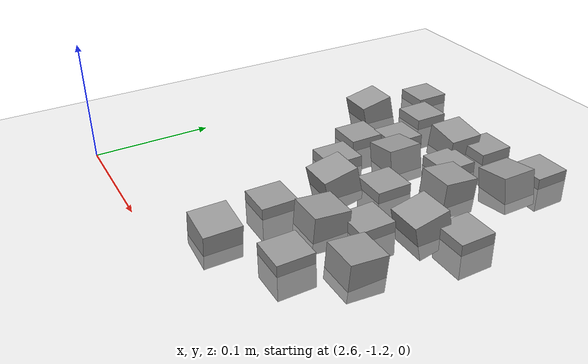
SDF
<sdf version="1.7">
 <world name="default">
  <model name="ground_plane">
   <static>1</static>
   <link name="link">
    <collision name="collision">
     <geometry><plane><normal>0 0 1</normal><size>100 100</size></plane></geometry>
     <surface><friction><ode><mu>100</mu><mu2>50</mu2></ode></friction></surface>
    </collision>
    <visual name="visual">
     <cast_shadows>0</cast_shadows>
     <geometry><plane><normal>0 0 1</normal><size>100 100</size></plane></geometry>
     <material>
      <script><uri>file://media/materials/scripts/gazebo.material</uri><name>Gazebo/Grey</name></script>
     </material>
    </visual>
   </link>
  </model>
  <model name="stone_road_12">
   <link name="link_0_clone_0">
    <inertial>
     <mass>1</mass>
     <inertia>
      <ixx>0.166667</ixx>
      <ixy>0</ixy>
      <ixz>0</ixz>
      <iyy>0.166667</iyy>
      <iyz>0</iyz>
      <izz>0.166667</izz>
     </inertia>
    </inertial>
    <pose>-0.104982 -0.15412 0.003778 0.2 -0 0</pose>
    <kinematic>1</kinematic>
    <visual name="visual">
     <geometry><box><size>0.03 0.03 0.03</size></box></geometry>
     <material>
      <lighting>1</lighting>
      <script><uri>file://media/materials/scripts/gazebo.material</uri><name>Gazebo/Grey</name></script>
      <shader type="pixel"><normal_map>__default__</normal_map></shader>
      <ambient>0.3 0.3 0.3 1</ambient>
      <diffuse>0.7 0.7 0.7 1</diffuse>
      <specular>0.01 0.01 0.01 1</specular>
      <emissive>0 0 0 1</emissive>
     </material>
    </visual>
    <collision name="collision">
     <geometry><box><size>0.03 0.03 0.03</size></box></geometry>
     <surface>
      <friction>
       <ode><mu>1</mu><mu2>1</mu2><fdir1>0 0 0</fdir1><slip1>0</slip1><slip2>0</slip2></ode>
       <torsional>
        <coefficient>1</coefficient>
        <patch_radius>0</patch_radius>
        <surface_radius>0</surface_radius>
        <use_patch_radius>1</use_patch_radius>
        <ode><slip>0</slip></ode>
       </torsional>
      </friction>
      <bounce><restitution_coefficient>0</restitution_coefficient><threshold>1e+06</threshold></bounce>
      <contact>
       <collide_without_contact>0</collide_without_contact>
       <collide_without_contact_bitmask>1</collide_without_contact_bitmask>
       <collide_bitmask>1</collide_bitmask>
       <ode>
        <soft_cfm>0</soft_cfm>
        <soft_erp>0.2</soft_erp>
        <kp>1e+13</kp>
        <kd>1</kd>
        <max_vel>0.01</max_vel>
        <min_depth>0</min_depth>
       </ode>
       <bullet>
        <split_impulse>1</split_impulse>
        <split_impulse_penetration_threshold>-0.01</split_impulse_penetration_threshold>
        <soft_cfm>0</soft_cfm>
        <soft_erp>0.2</soft_erp>
        <kp>1e+13</kp>
        <kd>1</kd>
       </bullet>
      </contact>
     </surface>
    </collision>
   </link>
   <link name="link_0_clone_1">
    <inertial>
     <mass>1</mass>
     <inertia>
      <ixx>0.166667</ixx>
      <ixy>0</ixy>
      <ixz>0</ixz>
      <iyy>0.166667</iyy>
      <iyz>0</iyz>
      <izz>0.166667</izz>
     </inertia>
    </inertial>
    <pose>-0.022921 -0.129606 0.003778 0.2 -0 0</pose>
    <kinematic>1</kinematic>
    <visual name="visual">
     <geometry><box><size>0.03 0.03 0.03</size></box></geometry>
     <material>
      <lighting>1</lighting>
      <script><uri>file://media/materials/scripts/gazebo.material</uri><name>Gazebo/Grey</name></script>
      <shader type="pixel"><normal_map>__default__</normal_map></shader>
      <ambient>0.3 0.3 0.3 1</ambient>
      <diffuse>0.7 0.7 0.7 1</diffuse>
      <specular>0.01 0.01 0.01 1</specular>
      <emissive>0 0 0 1</emissive>
     </material>
    </visual>
    <collision name="collision">
     <geometry><box><size>0.03 0.03 0.03</size></box></geometry>
     <surface>
      <friction>
       <ode><mu>1</mu><mu2>1</mu2><fdir1>0 0 0</fdir1><slip1>0</slip1><slip2>0</slip2></ode>
       <torsional>
        <coefficient>1</coefficient>
        <patch_radius>0</patch_radius>
        <surface_radius>0</surface_radius>
        <use_patch_radius>1</use_patch_radius>
        <ode><slip>0</slip></ode>
       </torsional>
      </friction>
      <bounce><restitution_coefficient>0</restitution_coefficient><threshold>1e+06</threshold></bounce>
      <contact>
       <collide_without_contact>0</collide_without_contact>
       <collide_without_contact_bitmask>1</collide_without_contact_bitmask>
       <collide_bitmask>1</collide_bitmask>
       <ode>
        <soft_cfm>0</soft_cfm>
        <soft_erp>0.2</soft_erp>
        <kp>1e+13</kp>
        <kd>1</kd>
        <max_vel>0.01</max_vel>
        <min_depth>0</min_depth>
       </ode>
       <bullet>
        <split_impulse>1</split_impulse>
        <split_impulse_penetration_threshold>-0.01</split_impulse_penetration_threshold>
        <soft_cfm>0</soft_cfm>
        <soft_erp>0.2</soft_erp>
        <kp>1e+13</kp>
        <kd>1</kd>
       </bullet>
      </contact>
     </surface>
    </collision>
   </link>
   <link name="link_0_clone_2_clone">
    <inertial>
     <mass>1</mass>
     <inertia>
      <ixx>0.166667</ixx>
      <ixy>0</ixy>
      <ixz>0</ixz>
      <iyy>0.166667</iyy>
      <iyz>0</iyz>
      <izz>0.166667</izz>
     </inertia>
    </inertial>
    <pose>-0.10771 -0.03187 0.003778 0 0.15 0</pose>
    <kinematic>1</kinematic>
    <visual name="visual">
     <geometry><box><size>0.03 0.03 0.03</size></box></geometry>
     <material>
      <lighting>1</lighting>
      <script><uri>file://media/materials/scripts/gazebo.material</uri><name>Gazebo/Grey</name></script>
      <shader type="pixel"><normal_map>__default__</normal_map></shader>
      <ambient>0.3 0.3 0.3 1</ambient>
      <diffuse>0.7 0.7 0.7 1</diffuse>
      <specular>0.01 0.01 0.01 1</specular>
      <emissive>0 0 0 1</emissive>
     </material>
    </visual>
    <collision name="collision">
     <geometry><box><size>0.03 0.03 0.03</size></box></geometry>
     <surface>
      <friction>
       <ode><mu>1</mu><mu2>1</mu2><fdir1>0 0 0</fdir1><slip1>0</slip1><slip2>0</slip2></ode>
       <torsional>
        <coefficient>1</coefficient>
        <patch_radius>0</patch_radius>
        <surface_radius>0</surface_radius>
        <use_patch_radius>1</use_patch_radius>
        <ode><slip>0</slip></ode>
       </torsional>
      </friction>
      <bounce><restitution_coefficient>0</restitution_coefficient><threshold>1e+06</threshold></bounce>
      <contact>
       <collide_without_contact>0</collide_without_contact>
       <collide_without_contact_bitmask>1</collide_without_contact_bitmask>
       <collide_bitmask>1</collide_bitmask>
       <ode>
        <soft_cfm>0</soft_cfm>
        <soft_erp>0.2</soft_erp>
        <kp>1e+13</kp>
        <kd>1</kd>
        <max_vel>0.01</max_vel>
        <min_depth>0</min_depth>
       </ode>
       <bullet>
        <split_impulse>1</split_impulse>
        <split_impulse_penetration_threshold>-0.01</split_impulse_penetration_threshold>
        <soft_cfm>0</soft_cfm>
        <soft_erp>0.2</soft_erp>
        <kp>1e+13</kp>
        <kd>1</kd>
       </bullet>
      </contact>
     </surface>
    </collision>
   </link>
   <link name="link_0_clone_2_clone_2_clone_0">
    <inertial>
     <mass>1</mass>
     <inertia>
      <ixx>0.166667</ixx>
      <ixy>0</ixy>
      <ixz>0</ixz>
      <iyy>0.166667</iyy>
      <iyz>0</iyz>
      <izz>0.166667</izz>
     </inertia>
    </inertial>
    <pose>-0.032874 -0.039714 0.003778 0 -0.15 0</pose>
    <kinematic>1</kinematic>
    <visual name="visual">
     <geometry><box><size>0.03 0.03 0.03</size></box></geometry>
     <material>
      <lighting>1</lighting>
      <script><uri>file://media/materials/scripts/gazebo.material</uri><name>Gazebo/Grey</name></script>
      <shader type="pixel"><normal_map>__default__</normal_map></shader>
      <ambient>0.3 0.3 0.3 1</ambient>
      <diffuse>0.7 0.7 0.7 1</diffuse>
      <specular>0.01 0.01 0.01 1</specular>
      <emissive>0 0 0 1</emissive>
     </material>
    </visual>
    <collision name="collision">
     <geometry><box><size>0.03 0.03 0.03</size></box></geometry>
     <surface>
      <friction>
       <ode><mu>1</mu><mu2>1</mu2><fdir1>0 0 0</fdir1><slip1>0</slip1><slip2>0</slip2></ode>
       <torsional>
        <coefficient>1</coefficient>
        <patch_radius>0</patch_radius>
        <surface_radius>0</surface_radius>
        <use_patch_radius>1</use_patch_radius>
        <ode><slip>0</slip></ode>
       </torsional>
      </friction>
      <bounce><restitution_coefficient>0</restitution_coefficient><threshold>1e+06</threshold></bounce>
      <contact>
       <collide_without_contact>0</collide_without_contact>
       <collide_without_contact_bitmask>1</collide_without_contact_bitmask>
       <collide_bitmask>1</collide_bitmask>
       <ode>
        <soft_cfm>0</soft_cfm>
        <soft_erp>0.2</soft_erp>
        <kp>1e+13</kp>
        <kd>1</kd>
        <max_vel>0.01</max_vel>
        <min_depth>0</min_depth>
       </ode>
       <bullet>
        <split_impulse>1</split_impulse>
        <split_impulse_penetration_threshold>-0.01</split_impulse_penetration_threshold>
        <soft_cfm>0</soft_cfm>
        <soft_erp>0.2</soft_erp>
        <kp>1e+13</kp>
        <kd>1</kd>
       </bullet>
      </contact>
     </surface>
    </collision>
   </link>
   <link name="link_0_clone_2_clone_2_clone_13_clone_clone_10">
    <inertial>
     <mass>1</mass>
     <inertia>
      <ixx>0.166667</ixx>
      <ixy>0</ixy>
      <ixz>0</ixz>
      <iyy>0.166667</iyy>
      <iyz>0</iyz>
      <izz>0.166667</izz>
     </inertia>
    </inertial>
    <pose>-0.006825 -0.196489 0.003778 -0.1 0 0</pose>
    <kinematic>1</kinematic>
    <visual name="visual">
     <geometry><box><size>0.03 0.03 0.03</size></box></geometry>
     <material>
      <lighting>1</lighting>
      <script><uri>file://media/materials/scripts/gazebo.material</uri><name>Gazebo/Grey</name></script>
      <shader type="pixel"><normal_map>__default__</normal_map></shader>
      <ambient>0.3 0.3 0.3 1</ambient>
      <diffuse>0.7 0.7 0.7 1</diffuse>
      <specular>0.01 0.01 0.01 1</specular>
      <emissive>0 0 0 1</emissive>
     </material>
    </visual>
    <collision name="collision">
     <geometry><box><size>0.03 0.03 0.03</size></box></geometry>
     <surface>
      <friction>
       <ode><mu>1</mu><mu2>1</mu2><fdir1>0 0 0</fdir1><slip1>0</slip1><slip2>0</slip2></ode>
       <torsional>
        <coefficient>1</coefficient>
        <patch_radius>0</patch_radius>
        <surface_radius>0</surface_radius>
        <use_patch_radius>1</use_patch_radius>
        <ode><slip>0</slip></ode>
       </torsional>
      </friction>
      <bounce><restitution_coefficient>0</restitution_coefficient><threshold>1e+06</threshold></bounce>
      <contact>
       <collide_without_contact>0</collide_without_contact>
       <collide_without_contact_bitmask>1</collide_without_contact_bitmask>
       <collide_bitmask>1</collide_bitmask>
       <ode>
        <soft_cfm>0</soft_cfm>
        <soft_erp>0.2</soft_erp>
        <kp>1e+13</kp>
        <kd>1</kd>
        <max_vel>0.01</max_vel>
        <min_depth>0</min_depth>
       </ode>
       <bullet>
        <split_impulse>1</split_impulse>
        <split_impulse_penetration_threshold>-0.01</split_impulse_penetration_threshold>
        <soft_cfm>0</soft_cfm>
        <soft_erp>0.2</soft_erp>
        <kp>1e+13</kp>
        <kd>1</kd>
       </bullet>
      </contact>
     </surface>
    </collision>
   </link>
   <link name="link_0_clone_2_clone_2_clone_13_clone_clone_16_clone_10">
    <inertial>
     <mass>1</mass>
     <inertia>
      <ixx>0.166667</ixx>
      <ixy>0</ixy>
      <ixz>0</ixz>
      <iyy>0.166667</iyy>
      <iyz>0</iyz>
      <izz>0.166667</izz>
     </inertia>
    </inertial>
    <pose>-0.082186 -0.05781 -0.006222 0 -0 0</pose>
    <kinematic>1</kinematic>
    <visual name="visual">
     <geometry><box><size>0.03 0.03 0.03</size></box></geometry>
     <material>
      <lighting>1</lighting>
      <script><uri>file://media/materials/scripts/gazebo.material</uri><name>Gazebo/Grey</name></script>
      <shader type="pixel"><normal_map>__default__</normal_map></shader>
      <ambient>0.3 0.3 0.3 1</ambient>
      <diffuse>0.7 0.7 0.7 1</diffuse>
      <specular>0.01 0.01 0.01 1</specular>
      <emissive>0 0 0 1</emissive>
     </material>
    </visual>
    <collision name="collision">
     <geometry><box><size>0.03 0.03 0.03</size></box></geometry>
     <surface>
      <friction>
       <ode><mu>1</mu><mu2>1</mu2><fdir1>0 0 0</fdir1><slip1>0</slip1><slip2>0</slip2></ode>
       <torsional>
        <coefficient>1</coefficient>
        <patch_radius>0</patch_radius>
        <surface_radius>0</surface_radius>
        <use_patch_radius>1</use_patch_radius>
        <ode><slip>0</slip></ode>
       </torsional>
      </friction>
      <bounce><restitution_coefficient>0</restitution_coefficient><threshold>1e+06</threshold></bounce>
      <contact>
       <collide_without_contact>0</collide_without_contact>
       <collide_without_contact_bitmask>1</collide_without_contact_bitmask>
       <collide_bitmask>1</collide_bitmask>
       <ode>
        <soft_cfm>0</soft_cfm>
        <soft_erp>0.2</soft_erp>
        <kp>1e+13</kp>
        <kd>1</kd>
        <max_vel>0.01</max_vel>
        <min_depth>0</min_depth>
       </ode>
       <bullet>
        <split_impulse>1</split_impulse>
        <split_impulse_penetration_threshold>-0.01</split_impulse_penetration_threshold>
        <soft_cfm>0</soft_cfm>
        <soft_erp>0.2</soft_erp>
        <kp>1e+13</kp>
        <kd>1</kd>
       </bullet>
      </contact>
     </surface>
    </collision>
   </link>
   <link name="link_0_clone_2_clone_2_clone_13_clone_clone_16_clone_11">
    <inertial>
     <mass>1</mass>
     <inertia>
      <ixx>0.166667</ixx>
      <ixy>0</ixy>
      <ixz>0</ixz>
      <iyy>0.166667</iyy>
      <iyz>0</iyz>
      <izz>0.166667</izz>
     </inertia>
    </inertial>
    <pose>-0.141844 -0.066911 -0.006222 0 -0 0</pose>
    <kinematic>1</kinematic>
    <visual name="visual">
     <geometry><box><size>0.03 0.03 0.03</size></box></geometry>
     <material>
      <lighting>1</lighting>
      <script><uri>file://media/materials/scripts/gazebo.material</uri><name>Gazebo/Grey</name></script>
      <shader type="pixel"><normal_map>__default__</normal_map></shader>
      <ambient>0.3 0.3 0.3 1</ambient>
      <diffuse>0.7 0.7 0.7 1</diffuse>
      <specular>0.01 0.01 0.01 1</specular>
      <emissive>0 0 0 1</emissive>
     </material>
    </visual>
    <collision name="collision">
     <geometry><box><size>0.03 0.03 0.03</size></box></geometry>
     <surface>
      <friction>
       <ode><mu>1</mu><mu2>1</mu2><fdir1>0 0 0</fdir1><slip1>0</slip1><slip2>0</slip2></ode>
       <torsional>
        <coefficient>1</coefficient>
        <patch_radius>0</patch_radius>
        <surface_radius>0</surface_radius>
        <use_patch_radius>1</use_patch_radius>
        <ode><slip>0</slip></ode>
       </torsional>
      </friction>
      <bounce><restitution_coefficient>0</restitution_coefficient><threshold>1e+06</threshold></bounce>
      <contact>
       <collide_without_contact>0</collide_without_contact>
       <collide_without_contact_bitmask>1</collide_without_contact_bitmask>
       <collide_bitmask>1</collide_bitmask>
       <ode>
        <soft_cfm>0</soft_cfm>
        <soft_erp>0.2</soft_erp>
        <kp>1e+13</kp>
        <kd>1</kd>
        <max_vel>0.01</max_vel>
        <min_depth>0</min_depth>
       </ode>
       <bullet>
        <split_impulse>1</split_impulse>
        <split_impulse_penetration_threshold>-0.01</split_impulse_penetration_threshold>
        <soft_cfm>0</soft_cfm>
        <soft_erp>0.2</soft_erp>
        <kp>1e+13</kp>
        <kd>1</kd>
       </bullet>
      </contact>
     </surface>
    </collision>
   </link>
   <link name="link_0_clone_2_clone_2_clone_13_clone_clone_16_clone_12">
    <inertial>
     <mass>1</mass>
     <inertia>
      <ixx>0.166667</ixx>
      <ixy>0</ixy>
      <ixz>0</ixz>
      <iyy>0.166667</iyy>
      <iyz>0</iyz>
      <izz>0.166667</izz>
     </inertia>
    </inertial>
    <pose>-0.164908 -0.022947 -0.006222 0 -0 0</pose>
    <kinematic>1</kinematic>
    <visual name="visual">
     <geometry><box><size>0.03 0.03 0.03</size></box></geometry>
     <material>
      <lighting>1</lighting>
      <script><uri>file://media/materials/scripts/gazebo.material</uri><name>Gazebo/Grey</name></script>
      <shader type="pixel"><normal_map>__default__</normal_map></shader>
      <ambient>0.3 0.3 0.3 1</ambient>
      <diffuse>0.7 0.7 0.7 1</diffuse>
      <specular>0.01 0.01 0.01 1</specular>
      <emissive>0 0 0 1</emissive>
     </material>
    </visual>
    <collision name="collision">
     <geometry><box><size>0.03 0.03 0.03</size></box></geometry>
     <surface>
      <friction>
       <ode><mu>1</mu><mu2>1</mu2><fdir1>0 0 0</fdir1><slip1>0</slip1><slip2>0</slip2></ode>
       <torsional>
        <coefficient>1</coefficient>
        <patch_radius>0</patch_radius>
        <surface_radius>0</surface_radius>
        <use_patch_radius>1</use_patch_radius>
        <ode><slip>0</slip></ode>
       </torsional>
      </friction>
      <bounce><restitution_coefficient>0</restitution_coefficient><threshold>1e+06</threshold></bounce>
      <contact>
       <collide_without_contact>0</collide_without_contact>
       <collide_without_contact_bitmask>1</collide_without_contact_bitmask>
       <collide_bitmask>1</collide_bitmask>
       <ode>
        <soft_cfm>0</soft_cfm>
        <soft_erp>0.2</soft_erp>
        <kp>1e+13</kp>
        <kd>1</kd>
        <max_vel>0.01</max_vel>
        <min_depth>0</min_depth>
       </ode>
       <bullet>
        <split_impulse>1</split_impulse>
        <split_impulse_penetration_threshold>-0.01</split_impulse_penetration_threshold>
        <soft_cfm>0</soft_cfm>
        <soft_erp>0.2</soft_erp>
        <kp>1e+13</kp>
        <kd>1</kd>
       </bullet>
      </contact>
     </surface>
    </collision>
   </link>
   <link name="link_0_clone_2_clone_2_clone_13_clone_clone_16_clone_26">
    <inertial>
     <mass>1</mass>
     <inertia>
      <ixx>0.166667</ixx>
      <ixy>0</ixy>
      <ixz>0</ixz>
      <iyy>0.166667</iyy>
      <iyz>0</iyz>
      <izz>0.166667</izz>
     </inertia>
    </inertial>
    <pose>-0.035162 -0.002247 -0.006222 0 -0 0</pose>
    <kinematic>1</kinematic>
    <visual name="visual">
     <geometry><box><size>0.03 0.03 0.03</size></box></geometry>
     <material>
      <lighting>1</lighting>
      <script><uri>file://media/materials/scripts/gazebo.material</uri><name>Gazebo/Grey</name></script>
      <shader type="pixel"><normal_map>__default__</normal_map></shader>
      <ambient>0.3 0.3 0.3 1</ambient>
      <diffuse>0.7 0.7 0.7 1</diffuse>
      <specular>0.01 0.01 0.01 1</specular>
      <emissive>0 0 0 1</emissive>
     </material>
    </visual>
    <collision name="collision">
     <geometry><box><size>0.03 0.03 0.03</size></box></geometry>
     <surface>
      <friction>
       <ode><mu>1</mu><mu2>1</mu2><fdir1>0 0 0</fdir1><slip1>0</slip1><slip2>0</slip2></ode>
       <torsional>
        <coefficient>1</coefficient>
        <patch_radius>0</patch_radius>
        <surface_radius>0</surface_radius>
        <use_patch_radius>1</use_patch_radius>
        <ode><slip>0</slip></ode>
       </torsional>
      </friction>
      <bounce><restitution_coefficient>0</restitution_coefficient><threshold>1e+06</threshold></bounce>
      <contact>
       <collide_without_contact>0</collide_without_contact>
       <collide_without_contact_bitmask>1</collide_without_contact_bitmask>
       <collide_bitmask>1</collide_bitmask>
       <ode>
        <soft_cfm>0</soft_cfm>
        <soft_erp>0.2</soft_erp>
        <kp>1e+13</kp>
        <kd>1</kd>
        <max_vel>0.01</max_vel>
        <min_depth>0</min_depth>
       </ode>
       <bullet>
        <split_impulse>1</split_impulse>
        <split_impulse_penetration_threshold>-0.01</split_impulse_penetration_threshold>
        <soft_cfm>0</soft_cfm>
        <soft_erp>0.2</soft_erp>
        <kp>1e+13</kp>
        <kd>1</kd>
       </bullet>
      </contact>
     </surface>
    </collision>
   </link>
   <link name="link_0_clone_2_clone_2_clone_13_clone_clone_16_clone_27">
    <inertial>
     <mass>1</mass>
     <inertia>
      <ixx>0.166667</ixx>
      <ixy>0</ixy>
      <ixz>0</ixz>
      <iyy>0.166667</iyy>
      <iyz>0</iyz>
      <izz>0.166667</izz>
     </inertia>
    </inertial>
    <pose>-0.137316 -0.132225 -0.006222 0 -0 0</pose>
    <kinematic>1</kinematic>
    <visual name="visual">
     <geometry><box><size>0.03 0.03 0.03</size></box></geometry>
     <material>
      <lighting>1</lighting>
      <script><uri>file://media/materials/scripts/gazebo.material</uri><name>Gazebo/Grey</name></script>
      <shader type="pixel"><normal_map>__default__</normal_map></shader>
      <ambient>0.3 0.3 0.3 1</ambient>
      <diffuse>0.7 0.7 0.7 1</diffuse>
      <specular>0.01 0.01 0.01 1</specular>
      <emissive>0 0 0 1</emissive>
     </material>
    </visual>
    <collision name="collision">
     <geometry><box><size>0.03 0.03 0.03</size></box></geometry>
     <surface>
      <friction>
       <ode><mu>1</mu><mu2>1</mu2><fdir1>0 0 0</fdir1><slip1>0</slip1><slip2>0</slip2></ode>
       <torsional>
        <coefficient>1</coefficient>
        <patch_radius>0</patch_radius>
        <surface_radius>0</surface_radius>
        <use_patch_radius>1</use_patch_radius>
        <ode><slip>0</slip></ode>
       </torsional>
      </friction>
      <bounce><restitution_coefficient>0</restitution_coefficient><threshold>1e+06</threshold></bounce>
      <contact>
       <collide_without_contact>0</collide_without_contact>
       <collide_without_contact_bitmask>1</collide_without_contact_bitmask>
       <collide_bitmask>1</collide_bitmask>
       <ode>
        <soft_cfm>0</soft_cfm>
        <soft_erp>0.2</soft_erp>
        <kp>1e+13</kp>
        <kd>1</kd>
        <max_vel>0.01</max_vel>
        <min_depth>0</min_depth>
       </ode>
       <bullet>
        <split_impulse>1</split_impulse>
        <split_impulse_penetration_threshold>-0.01</split_impulse_penetration_threshold>
        <soft_cfm>0</soft_cfm>
        <soft_erp>0.2</soft_erp>
        <kp>1e+13</kp>
        <kd>1</kd>
       </bullet>
      </contact>
     </surface>
    </collision>
   </link>
   <link name="link_0_clone_2_clone_2_clone_13_clone_clone_16_clone_28">
    <inertial>
     <mass>1</mass>
     <inertia>
      <ixx>0.166667</ixx>
      <ixy>0</ixy>
      <ixz>0</ixz>
      <iyy>0.166667</iyy>
      <iyz>0</iyz>
      <izz>0.166667</izz>
     </inertia>
    </inertial>
    <pose>-0.10708 -0.209042 -0.006222 0 -0 0</pose>
    <kinematic>1</kinematic>
    <visual name="visual">
     <geometry><box><size>0.03 0.03 0.03</size></box></geometry>
     <material>
      <lighting>1</lighting>
      <script><uri>file://media/materials/scripts/gazebo.material</uri><name>Gazebo/Grey</name></script>
      <shader type="pixel"><normal_map>__default__</normal_map></shader>
      <ambient>0.3 0.3 0.3 1</ambient>
      <diffuse>0.7 0.7 0.7 1</diffuse>
      <specular>0.01 0.01 0.01 1</specular>
      <emissive>0 0 0 1</emissive>
     </material>
    </visual>
    <collision name="collision">
     <geometry><box><size>0.03 0.03 0.03</size></box></geometry>
     <surface>
      <friction>
       <ode><mu>1</mu><mu2>1</mu2><fdir1>0 0 0</fdir1><slip1>0</slip1><slip2>0</slip2></ode>
       <torsional>
        <coefficient>1</coefficient>
        <patch_radius>0</patch_radius>
        <surface_radius>0</surface_radius>
        <use_patch_radius>1</use_patch_radius>
        <ode><slip>0</slip></ode>
       </torsional>
      </friction>
      <bounce><restitution_coefficient>0</restitution_coefficient><threshold>1e+06</threshold></bounce>
      <contact>
       <collide_without_contact>0</collide_without_contact>
       <collide_without_contact_bitmask>1</collide_without_contact_bitmask>
       <collide_bitmask>1</collide_bitmask>
       <ode>
        <soft_cfm>0</soft_cfm>
        <soft_erp>0.2</soft_erp>
        <kp>1e+13</kp>
        <kd>1</kd>
        <max_vel>0.01</max_vel>
        <min_depth>0</min_depth>
       </ode>
       <bullet>
        <split_impulse>1</split_impulse>
        <split_impulse_penetration_threshold>-0.01</split_impulse_penetration_threshold>
        <soft_cfm>0</soft_cfm>
        <soft_erp>0.2</soft_erp>
        <kp>1e+13</kp>
        <kd>1</kd>
       </bullet>
      </contact>
     </surface>
    </collision>
   </link>
   <link name="link_0_clone_2_clone_2_clone_13_clone_clone_16_clone_29">
    <inertial>
     <mass>1</mass>
     <inertia>
      <ixx>0.166667</ixx>
      <ixy>0</ixy>
      <ixz>0</ixz>
      <iyy>0.166667</iyy>
      <iyz>0</iyz>
      <izz>0.166667</izz>
     </inertia>
    </inertial>
    <pose>-0.042964 -0.229632 -0.006222 0 -0 0</pose>
    <kinematic>1</kinematic>
    <visual name="visual">
     <geometry><box><size>0.03 0.03 0.03</size></box></geometry>
     <material>
      <lighting>1</lighting>
      <script><uri>file://media/materials/scripts/gazebo.material</uri><name>Gazebo/Grey</name></script>
      <shader type="pixel"><normal_map>__default__</normal_map></shader>
      <ambient>0.3 0.3 0.3 1</ambient>
      <diffuse>0.7 0.7 0.7 1</diffuse>
      <specular>0.01 0.01 0.01 1</specular>
      <emissive>0 0 0 1</emissive>
     </material>
    </visual>
    <collision name="collision">
     <geometry><box><size>0.03 0.03 0.03</size></box></geometry>
     <surface>
      <friction>
       <ode><mu>1</mu><mu2>1</mu2><fdir1>0 0 0</fdir1><slip1>0</slip1><slip2>0</slip2></ode>
       <torsional>
        <coefficient>1</coefficient>
        <patch_radius>0</patch_radius>
        <surface_radius>0</surface_radius>
        <use_patch_radius>1</use_patch_radius>
        <ode><slip>0</slip></ode>
       </torsional>
      </friction>
      <bounce><restitution_coefficient>0</restitution_coefficient><threshold>1e+06</threshold></bounce>
      <contact>
       <collide_without_contact>0</collide_without_contact>
       <collide_without_contact_bitmask>1</collide_without_contact_bitmask>
       <collide_bitmask>1</collide_bitmask>
       <ode>
        <soft_cfm>0</soft_cfm>
        <soft_erp>0.2</soft_erp>
        <kp>1e+13</kp>
        <kd>1</kd>
        <max_vel>0.01</max_vel>
        <min_depth>0</min_depth>
       </ode>
       <bullet>
        <split_impulse>1</split_impulse>
        <split_impulse_penetration_threshold>-0.01</split_impulse_penetration_threshold>
        <soft_cfm>0</soft_cfm>
        <soft_erp>0.2</soft_erp>
        <kp>1e+13</kp>
        <kd>1</kd>
       </bullet>
      </contact>
     </surface>
    </collision>
   </link>
   <link name="link_0_clone_2_clone_2_clone_13_clone_clone_16_clone_30">
    <inertial>
     <mass>1</mass>
     <inertia>
      <ixx>0.166667</ixx>
      <ixy>0</ixy>
      <ixz>0</ixz>
      <iyy>0.166667</iyy>
      <iyz>0</iyz>
      <izz>0.166667</izz>
     </inertia>
    </inertial>
    <pose>-0.160879 -0.095951 -0.006222 0 -0 0</pose>
    <kinematic>1</kinematic>
    <visual name="visual">
     <geometry><box><size>0.03 0.03 0.03</size></box></geometry>
     <material>
      <lighting>1</lighting>
      <script><uri>file://media/materials/scripts/gazebo.material</uri><name>Gazebo/Grey</name></script>
      <shader type="pixel"><normal_map>__default__</normal_map></shader>
      <ambient>0.3 0.3 0.3 1</ambient>
      <diffuse>0.7 0.7 0.7 1</diffuse>
      <specular>0.01 0.01 0.01 1</specular>
      <emissive>0 0 0 1</emissive>
     </material>
    </visual>
    <collision name="collision">
     <geometry><box><size>0.03 0.03 0.03</size></box></geometry>
     <surface>
      <friction>
       <ode><mu>1</mu><mu2>1</mu2><fdir1>0 0 0</fdir1><slip1>0</slip1><slip2>0</slip2></ode>
       <torsional>
        <coefficient>1</coefficient>
        <patch_radius>0</patch_radius>
        <surface_radius>0</surface_radius>
        <use_patch_radius>1</use_patch_radius>
        <ode><slip>0</slip></ode>
       </torsional>
      </friction>
      <bounce><restitution_coefficient>0</restitution_coefficient><threshold>1e+06</threshold></bounce>
      <contact>
       <collide_without_contact>0</collide_without_contact>
       <collide_without_contact_bitmask>1</collide_without_contact_bitmask>
       <collide_bitmask>1</collide_bitmask>
       <ode>
        <soft_cfm>0</soft_cfm>
        <soft_erp>0.2</soft_erp>
        <kp>1e+13</kp>
        <kd>1</kd>
        <max_vel>0.01</max_vel>
        <min_depth>0</min_depth>
       </ode>
       <bullet>
        <split_impulse>1</split_impulse>
        <split_impulse_penetration_threshold>-0.01</split_impulse_penetration_threshold>
        <soft_cfm>0</soft_cfm>
        <soft_erp>0.2</soft_erp>
        <kp>1e+13</kp>
        <kd>1</kd>
       </bullet>
      </contact>
     </surface>
    </collision>
   </link>
   <link name="link_0_clone_2_clone_2_clone_13_clone_clone_16_clone_31">
    <inertial>
     <mass>1</mass>
     <inertia>
      <ixx>0.166667</ixx>
      <ixy>0</ixy>
      <ixz>0</ixz>
      <iyy>0.166667</iyy>
      <iyz>0</iyz>
      <izz>0.166667</izz>
     </inertia>
    </inertial>
    <pose>-0.198811 0.004584 -0.006222 0 -0 0</pose>
    <kinematic>1</kinematic>
    <visual name="visual">
     <geometry><box><size>0.03 0.03 0.03</size></box></geometry>
     <material>
      <lighting>1</lighting>
      <script><uri>file://media/materials/scripts/gazebo.material</uri><name>Gazebo/Grey</name></script>
      <shader type="pixel"><normal_map>__default__</normal_map></shader>
      <ambient>0.3 0.3 0.3 1</ambient>
      <diffuse>0.7 0.7 0.7 1</diffuse>
      <specular>0.01 0.01 0.01 1</specular>
      <emissive>0 0 0 1</emissive>
     </material>
    </visual>
    <collision name="collision">
     <geometry><box><size>0.03 0.03 0.03</size></box></geometry>
     <surface>
      <friction>
       <ode><mu>1</mu><mu2>1</mu2><fdir1>0 0 0</fdir1><slip1>0</slip1><slip2>0</slip2></ode>
       <torsional>
        <coefficient>1</coefficient>
        <patch_radius>0</patch_radius>
        <surface_radius>0</surface_radius>
        <use_patch_radius>1</use_patch_radius>
        <ode><slip>0</slip></ode>
       </torsional>
      </friction>
      <bounce><restitution_coefficient>0</restitution_coefficient><threshold>1e+06</threshold></bounce>
      <contact>
       <collide_without_contact>0</collide_without_contact>
       <collide_without_contact_bitmask>1</collide_without_contact_bitmask>
       <collide_bitmask>1</collide_bitmask>
       <ode>
        <soft_cfm>0</soft_cfm>
        <soft_erp>0.2</soft_erp>
        <kp>1e+13</kp>
        <kd>1</kd>
        <max_vel>0.01</max_vel>
        <min_depth>0</min_depth>
       </ode>
       <bullet>
        <split_impulse>1</split_impulse>
        <split_impulse_penetration_threshold>-0.01</split_impulse_penetration_threshold>
        <soft_cfm>0</soft_cfm>
        <soft_erp>0.2</soft_erp>
        <kp>1e+13</kp>
        <kd>1</kd>
       </bullet>
      </contact>
     </surface>
    </collision>
   </link>
   <link name="link_0_clone_2_clone_2_clone_13_clone_clone_16_clone_5">
    <inertial>
     <mass>1</mass>
     <inertia>
      <ixx>0.166667</ixx>
      <ixy>0</ixy>
      <ixz>0</ixz>
      <iyy>0.166667</iyy>
      <iyz>0</iyz>
      <izz>0.166667</izz>
     </inertia>
    </inertial>
    <pose>-0.086674 -0.014784 -0.006222 0 -0 0</pose>
    <kinematic>1</kinematic>
    <visual name="visual">
     <geometry><box><size>0.03 0.03 0.03</size></box></geometry>
     <material>
      <lighting>1</lighting>
      <script><uri>file://media/materials/scripts/gazebo.material</uri><name>Gazebo/Grey</name></script>
      <shader type="pixel"><normal_map>__default__</normal_map></shader>
      <ambient>0.3 0.3 0.3 1</ambient>
      <diffuse>0.7 0.7 0.7 1</diffuse>
      <specular>0.01 0.01 0.01 1</specular>
      <emissive>0 0 0 1</emissive>
     </material>
    </visual>
    <collision name="collision">
     <geometry><box><size>0.03 0.03 0.03</size></box></geometry>
     <surface>
      <friction>
       <ode><mu>1</mu><mu2>1</mu2><fdir1>0 0 0</fdir1><slip1>0</slip1><slip2>0</slip2></ode>
       <torsional>
        <coefficient>1</coefficient>
        <patch_radius>0</patch_radius>
        <surface_radius>0</surface_radius>
        <use_patch_radius>1</use_patch_radius>
        <ode><slip>0</slip></ode>
       </torsional>
      </friction>
      <bounce><restitution_coefficient>0</restitution_coefficient><threshold>1e+06</threshold></bounce>
      <contact>
       <collide_without_contact>0</collide_without_contact>
       <collide_without_contact_bitmask>1</collide_without_contact_bitmask>
       <collide_bitmask>1</collide_bitmask>
       <ode>
        <soft_cfm>0</soft_cfm>
        <soft_erp>0.2</soft_erp>
        <kp>1e+13</kp>
        <kd>1</kd>
        <max_vel>0.01</max_vel>
        <min_depth>0</min_depth>
       </ode>
       <bullet>
        <split_impulse>1</split_impulse>
        <split_impulse_penetration_threshold>-0.01</split_impulse_penetration_threshold>
        <soft_cfm>0</soft_cfm>
        <soft_erp>0.2</soft_erp>
        <kp>1e+13</kp>
        <kd>1</kd>
       </bullet>
      </contact>
     </surface>
    </collision>
   </link>
   <link name="link_0_clone_2_clone_2_clone_13_clone_clone_16_clone_7">
    <inertial>
     <mass>1</mass>
     <inertia>
      <ixx>0.166667</ixx>
      <ixy>0</ixy>
      <ixz>0</ixz>
      <iyy>0.166667</iyy>
      <iyz>0</iyz>
      <izz>0.166667</izz>
     </inertia>
    </inertial>
    <pose>0.000883 -0.109959 -0.006222 0 -0 0</pose>
    <kinematic>1</kinematic>
    <visual name="visual">
     <geometry><box><size>0.03 0.03 0.03</size></box></geometry>
     <material>
      <lighting>1</lighting>
      <script><uri>file://media/materials/scripts/gazebo.material</uri><name>Gazebo/Grey</name></script>
      <shader type="pixel"><normal_map>__default__</normal_map></shader>
      <ambient>0.3 0.3 0.3 1</ambient>
      <diffuse>0.7 0.7 0.7 1</diffuse>
      <specular>0.01 0.01 0.01 1</specular>
      <emissive>0 0 0 1</emissive>
     </material>
    </visual>
    <collision name="collision">
     <geometry><box><size>0.03 0.03 0.03</size></box></geometry>
     <surface>
      <friction>
       <ode><mu>1</mu><mu2>1</mu2><fdir1>0 0 0</fdir1><slip1>0</slip1><slip2>0</slip2></ode>
       <torsional>
        <coefficient>1</coefficient>
        <patch_radius>0</patch_radius>
        <surface_radius>0</surface_radius>
        <use_patch_radius>1</use_patch_radius>
        <ode><slip>0</slip></ode>
       </torsional>
      </friction>
      <bounce><restitution_coefficient>0</restitution_coefficient><threshold>1e+06</threshold></bounce>
      <contact>
       <collide_without_contact>0</collide_without_contact>
       <collide_without_contact_bitmask>1</collide_without_contact_bitmask>
       <collide_bitmask>1</collide_bitmask>
       <ode>
        <soft_cfm>0</soft_cfm>
        <soft_erp>0.2</soft_erp>
        <kp>1e+13</kp>
        <kd>1</kd>
        <max_vel>0.01</max_vel>
        <min_depth>0</min_depth>
       </ode>
       <bullet>
        <split_impulse>1</split_impulse>
        <split_impulse_penetration_threshold>-0.01</split_impulse_penetration_threshold>
        <soft_cfm>0</soft_cfm>
        <soft_erp>0.2</soft_erp>
        <kp>1e+13</kp>
        <kd>1</kd>
       </bullet>
      </contact>
     </surface>
    </collision>
   </link>
   <link name="link_0_clone_2_clone_2_clone_13_clone_clone_16_clone_8">
    <inertial>
     <mass>1</mass>
     <inertia>
      <ixx>0.166667</ixx>
      <ixy>0</ixy>
      <ixz>0</ixz>
      <iyy>0.166667</iyy>
      <iyz>0</iyz>
      <izz>0.166667</izz>
     </inertia>
    </inertial>
    <pose>-0.045715 -0.162471 -0.006222 0 -0 0</pose>
    <kinematic>1</kinematic>
    <visual name="visual">
     <geometry><box><size>0.03 0.03 0.03</size></box></geometry>
     <material>
      <lighting>1</lighting>
      <script><uri>file://media/materials/scripts/gazebo.material</uri><name>Gazebo/Grey</name></script>
      <shader type="pixel"><normal_map>__default__</normal_map></shader>
      <ambient>0.3 0.3 0.3 1</ambient>
      <diffuse>0.7 0.7 0.7 1</diffuse>
      <specular>0.01 0.01 0.01 1</specular>
      <emissive>0 0 0 1</emissive>
     </material>
    </visual>
    <collision name="collision">
     <geometry><box><size>0.03 0.03 0.03</size></box></geometry>
     <surface>
      <friction>
       <ode><mu>1</mu><mu2>1</mu2><fdir1>0 0 0</fdir1><slip1>0</slip1><slip2>0</slip2></ode>
       <torsional>
        <coefficient>1</coefficient>
        <patch_radius>0</patch_radius>
        <surface_radius>0</surface_radius>
        <use_patch_radius>1</use_patch_radius>
        <ode><slip>0</slip></ode>
       </torsional>
      </friction>
      <bounce><restitution_coefficient>0</restitution_coefficient><threshold>1e+06</threshold></bounce>
      <contact>
       <collide_without_contact>0</collide_without_contact>
       <collide_without_contact_bitmask>1</collide_without_contact_bitmask>
       <collide_bitmask>1</collide_bitmask>
       <ode>
        <soft_cfm>0</soft_cfm>
        <soft_erp>0.2</soft_erp>
        <kp>1e+13</kp>
        <kd>1</kd>
        <max_vel>0.01</max_vel>
        <min_depth>0</min_depth>
       </ode>
       <bullet>
        <split_impulse>1</split_impulse>
        <split_impulse_penetration_threshold>-0.01</split_impulse_penetration_threshold>
        <soft_cfm>0</soft_cfm>
        <soft_erp>0.2</soft_erp>
        <kp>1e+13</kp>
        <kd>1</kd>
       </bullet>
      </contact>
     </surface>
    </collision>
   </link>
   <link name="link_0_clone_2_clone_2_clone_13_clone_clone_16_clone_9">
    <inertial>
     <mass>1</mass>
     <inertia>
      <ixx>0.166667</ixx>
      <ixy>0</ixy>
      <ixz>0</ixz>
      <iyy>0.166667</iyy>
      <iyz>0</iyz>
      <izz>0.166667</izz>
     </inertia>
    </inertial>
    <pose>-0.081689 -0.122641 -0.006222 0 -0 0</pose>
    <kinematic>1</kinematic>
    <visual name="visual">
     <geometry><box><size>0.03 0.03 0.03</size></box></geometry>
     <material>
      <lighting>1</lighting>
      <script><uri>file://media/materials/scripts/gazebo.material</uri><name>Gazebo/Grey</name></script>
      <shader type="pixel"><normal_map>__default__</normal_map></shader>
      <ambient>0.3 0.3 0.3 1</ambient>
      <diffuse>0.7 0.7 0.7 1</diffuse>
      <specular>0.01 0.01 0.01 1</specular>
      <emissive>0 0 0 1</emissive>
     </material>
    </visual>
    <collision name="collision">
     <geometry><box><size>0.03 0.03 0.03</size></box></geometry>
     <surface>
      <friction>
       <ode><mu>1</mu><mu2>1</mu2><fdir1>0 0 0</fdir1><slip1>0</slip1><slip2>0</slip2></ode>
       <torsional>
        <coefficient>1</coefficient>
        <patch_radius>0</patch_radius>
        <surface_radius>0</surface_radius>
        <use_patch_radius>1</use_patch_radius>
        <ode><slip>0</slip></ode>
       </torsional>
      </friction>
      <bounce><restitution_coefficient>0</restitution_coefficient><threshold>1e+06</threshold></bounce>
      <contact>
       <collide_without_contact>0</collide_without_contact>
       <collide_without_contact_bitmask>1</collide_without_contact_bitmask>
       <collide_bitmask>1</collide_bitmask>
       <ode>
        <soft_cfm>0</soft_cfm>
        <soft_erp>0.2</soft_erp>
        <kp>1e+13</kp>
        <kd>1</kd>
        <max_vel>0.01</max_vel>
        <min_depth>0</min_depth>
       </ode>
       <bullet>
        <split_impulse>1</split_impulse>
        <split_impulse_penetration_threshold>-0.01</split_impulse_penetration_threshold>
        <soft_cfm>0</soft_cfm>
        <soft_erp>0.2</soft_erp>
        <kp>1e+13</kp>
        <kd>1</kd>
       </bullet>
      </contact>
     </surface>
    </collision>
   </link>
   <link name="link_0_clone_2_clone_2_clone_13_clone_clone_8">
    <inertial>
     <mass>1</mass>
     <inertia>
      <ixx>0.166667</ixx>
      <ixy>0</ixy>
      <ixz>0</ixz>
      <iyy>0.166667</iyy>
      <iyz>0</iyz>
      <izz>0.166667</izz>
     </inertia>
    </inertial>
    <pose>-0.051207 -0.083778 0.003778 -0.1 0 0</pose>
    <kinematic>1</kinematic>
    <visual name="visual">
     <geometry><box><size>0.03 0.03 0.03</size></box></geometry>
     <material>
      <lighting>1</lighting>
      <script><uri>file://media/materials/scripts/gazebo.material</uri><name>Gazebo/Grey</name></script>
      <shader type="pixel"><normal_map>__default__</normal_map></shader>
      <ambient>0.3 0.3 0.3 1</ambient>
      <diffuse>0.7 0.7 0.7 1</diffuse>
      <specular>0.01 0.01 0.01 1</specular>
      <emissive>0 0 0 1</emissive>
     </material>
    </visual>
    <collision name="collision">
     <geometry><box><size>0.03 0.03 0.03</size></box></geometry>
     <surface>
      <friction>
       <ode><mu>1</mu><mu2>1</mu2><fdir1>0 0 0</fdir1><slip1>0</slip1><slip2>0</slip2></ode>
       <torsional>
        <coefficient>1</coefficient>
        <patch_radius>0</patch_radius>
        <surface_radius>0</surface_radius>
        <use_patch_radius>1</use_patch_radius>
        <ode><slip>0</slip></ode>
       </torsional>
      </friction>
      <bounce><restitution_coefficient>0</restitution_coefficient><threshold>1e+06</threshold></bounce>
      <contact>
       <collide_without_contact>0</collide_without_contact>
       <collide_without_contact_bitmask>1</collide_without_contact_bitmask>
       <collide_bitmask>1</collide_bitmask>
       <ode>
        <soft_cfm>0</soft_cfm>
        <soft_erp>0.2</soft_erp>
        <kp>1e+13</kp>
        <kd>1</kd>
        <max_vel>0.01</max_vel>
        <min_depth>0</min_depth>
       </ode>
       <bullet>
        <split_impulse>1</split_impulse>
        <split_impulse_penetration_threshold>-0.01</split_impulse_penetration_threshold>
        <soft_cfm>0</soft_cfm>
        <soft_erp>0.2</soft_erp>
        <kp>1e+13</kp>
        <kd>1</kd>
       </bullet>
      </contact>
     </surface>
    </collision>
   </link>
   <link name="link_0_clone_2_clone_2_clone_13_clone_clone_9">
    <inertial>
     <mass>1</mass>
     <inertia>
      <ixx>0.166667</ixx>
      <ixy>0</ixy>
      <ixz>0</ixz>
      <iyy>0.166667</iyy>
      <iyz>0</iyz>
      <izz>0.166667</izz>
     </inertia>
    </inertial>
    <pose>-0.062692 -0.190617 0.003778 -0.1 0 0</pose>
    <kinematic>1</kinematic>
    <visual name="visual">
     <geometry><box><size>0.03 0.03 0.03</size></box></geometry>
     <material>
      <lighting>1</lighting>
      <script><uri>file://media/materials/scripts/gazebo.material</uri><name>Gazebo/Grey</name></script>
      <shader type="pixel"><normal_map>__default__</normal_map></shader>
      <ambient>0.3 0.3 0.3 1</ambient>
      <diffuse>0.7 0.7 0.7 1</diffuse>
      <specular>0.01 0.01 0.01 1</specular>
      <emissive>0 0 0 1</emissive>
     </material>
    </visual>
    <collision name="collision">
     <geometry><box><size>0.03 0.03 0.03</size></box></geometry>
     <surface>
      <friction>
       <ode><mu>1</mu><mu2>1</mu2><fdir1>0 0 0</fdir1><slip1>0</slip1><slip2>0</slip2></ode>
       <torsional>
        <coefficient>1</coefficient>
        <patch_radius>0</patch_radius>
        <surface_radius>0</surface_radius>
        <use_patch_radius>1</use_patch_radius>
        <ode><slip>0</slip></ode>
       </torsional>
      </friction>
      <bounce><restitution_coefficient>0</restitution_coefficient><threshold>1e+06</threshold></bounce>
      <contact>
       <collide_without_contact>0</collide_without_contact>
       <collide_without_contact_bitmask>1</collide_without_contact_bitmask>
       <collide_bitmask>1</collide_bitmask>
       <ode>
        <soft_cfm>0</soft_cfm>
        <soft_erp>0.2</soft_erp>
        <kp>1e+13</kp>
        <kd>1</kd>
        <max_vel>0.01</max_vel>
        <min_depth>0</min_depth>
       </ode>
       <bullet>
        <split_impulse>1</split_impulse>
        <split_impulse_penetration_threshold>-0.01</split_impulse_penetration_threshold>
        <soft_cfm>0</soft_cfm>
        <soft_erp>0.2</soft_erp>
        <kp>1e+13</kp>
        <kd>1</kd>
       </bullet>
      </contact>
     </surface>
    </collision>
   </link>
   <link name="link_0_clone_2_clone_2_clone_3">
    <inertial>
     <mass>1</mass>
     <inertia>
      <ixx>0.166667</ixx>
      <ixy>0</ixy>
      <ixz>0</ixz>
      <iyy>0.166667</iyy>
      <iyz>0</iyz>
      <izz>0.166667</izz>
     </inertia>
    </inertial>
    <pose>-0.110514 -0.090915 0.003778 0 -0.15 0</pose>
    <kinematic>1</kinematic>
    <visual name="visual">
     <geometry><box><size>0.03 0.03 0.03</size></box></geometry>
     <material>
      <lighting>1</lighting>
      <script><uri>file://media/materials/scripts/gazebo.material</uri><name>Gazebo/Grey</name></script>
      <shader type="pixel"><normal_map>__default__</normal_map></shader>
      <ambient>0.3 0.3 0.3 1</ambient>
      <diffuse>0.7 0.7 0.7 1</diffuse>
      <specular>0.01 0.01 0.01 1</specular>
      <emissive>0 0 0 1</emissive>
     </material>
    </visual>
    <collision name="collision">
     <geometry><box><size>0.03 0.03 0.03</size></box></geometry>
     <surface>
      <friction>
       <ode><mu>1</mu><mu2>1</mu2><fdir1>0 0 0</fdir1><slip1>0</slip1><slip2>0</slip2></ode>
       <torsional>
        <coefficient>1</coefficient>
        <patch_radius>0</patch_radius>
        <surface_radius>0</surface_radius>
        <use_patch_radius>1</use_patch_radius>
        <ode><slip>0</slip></ode>
       </torsional>
      </friction>
      <bounce><restitution_coefficient>0</restitution_coefficient><threshold>1e+06</threshold></bounce>
      <contact>
       <collide_without_contact>0</collide_without_contact>
       <collide_without_contact_bitmask>1</collide_without_contact_bitmask>
       <collide_bitmask>1</collide_bitmask>
       <ode>
        <soft_cfm>0</soft_cfm>
        <soft_erp>0.2</soft_erp>
        <kp>1e+13</kp>
        <kd>1</kd>
        <max_vel>0.01</max_vel>
        <min_depth>0</min_depth>
       </ode>
       <bullet>
        <split_impulse>1</split_impulse>
        <split_impulse_penetration_threshold>-0.01</split_impulse_penetration_threshold>
        <soft_cfm>0</soft_cfm>
        <soft_erp>0.2</soft_erp>
        <kp>1e+13</kp>
        <kd>1</kd>
       </bullet>
      </contact>
     </surface>
    </collision>
   </link>
   <link name="link_0_clone_2_clone_6">
    <inertial>
     <mass>1</mass>
     <inertia>
      <ixx>0.166667</ixx>
      <ixy>0</ixy>
      <ixz>0</ixz>
      <iyy>0.166667</iyy>
      <iyz>0</iyz>
      <izz>0.166667</izz>
     </inertia>
    </inertial>
    <pose>-0.087859 -0.263184 0.003778 0 0.15 0</pose>
    <kinematic>1</kinematic>
    <visual name="visual">
     <geometry><box><size>0.03 0.03 0.03</size></box></geometry>
     <material>
      <lighting>1</lighting>
      <script><uri>file://media/materials/scripts/gazebo.material</uri><name>Gazebo/Grey</name></script>
      <shader type="pixel"><normal_map>__default__</normal_map></shader>
      <ambient>0.3 0.3 0.3 1</ambient>
      <diffuse>0.7 0.7 0.7 1</diffuse>
      <specular>0.01 0.01 0.01 1</specular>
      <emissive>0 0 0 1</emissive>
     </material>
    </visual>
    <collision name="collision">
     <geometry><box><size>0.03 0.03 0.03</size></box></geometry>
     <surface>
      <friction>
       <ode><mu>1</mu><mu2>1</mu2><fdir1>0 0 0</fdir1><slip1>0</slip1><slip2>0</slip2></ode>
       <torsional>
        <coefficient>1</coefficient>
        <patch_radius>0</patch_radius>
        <surface_radius>0</surface_radius>
        <use_patch_radius>1</use_patch_radius>
        <ode><slip>0</slip></ode>
       </torsional>
      </friction>
      <bounce><restitution_coefficient>0</restitution_coefficient><threshold>1e+06</threshold></bounce>
      <contact>
       <collide_without_contact>0</collide_without_contact>
       <collide_without_contact_bitmask>1</collide_without_contact_bitmask>
       <collide_bitmask>1</collide_bitmask>
       <ode>
        <soft_cfm>0</soft_cfm>
        <soft_erp>0.2</soft_erp>
        <kp>1e+13</kp>
        <kd>1</kd>
        <max_vel>0.01</max_vel>
        <min_depth>0</min_depth>
       </ode>
       <bullet>
        <split_impulse>1</split_impulse>
        <split_impulse_penetration_threshold>-0.01</split_impulse_penetration_threshold>
        <soft_cfm>0</soft_cfm>
        <soft_erp>0.2</soft_erp>
        <kp>1e+13</kp>
        <kd>1</kd>
       </bullet>
      </contact>
     </surface>
    </collision>
   </link>
   <link name="link_0_clone_6">
    <inertial>
     <mass>1</mass>
     <inertia>
      <ixx>0.166667</ixx>
      <ixy>0</ixy>
      <ixz>0</ixz>
      <iyy>0.166667</iyy>
      <iyz>0</iyz>
      <izz>0.166667</izz>
     </inertia>
    </inertial>
    <pose>-0.198423 -0.058498 0.003778 0.2 -0 0</pose>
    <kinematic>1</kinematic>
    <visual name="visual">
     <geometry><box><size>0.03 0.03 0.03</size></box></geometry>
     <material>
      <lighting>1</lighting>
      <script><uri>file://media/materials/scripts/gazebo.material</uri><name>Gazebo/Grey</name></script>
      <shader type="pixel"><normal_map>__default__</normal_map></shader>
      <ambient>0.3 0.3 0.3 1</ambient>
      <diffuse>0.7 0.7 0.7 1</diffuse>
      <specular>0.01 0.01 0.01 1</specular>
      <emissive>0 0 0 1</emissive>
     </material>
    </visual>
    <collision name="collision">
     <geometry><box><size>0.03 0.03 0.03</size></box></geometry>
     <surface>
      <friction>
       <ode><mu>1</mu><mu2>1</mu2><fdir1>0 0 0</fdir1><slip1>0</slip1><slip2>0</slip2></ode>
       <torsional>
        <coefficient>1</coefficient>
        <patch_radius>0</patch_radius>
        <surface_radius>0</surface_radius>
        <use_patch_radius>1</use_patch_radius>
        <ode><slip>0</slip></ode>
       </torsional>
      </friction>
      <bounce><restitution_coefficient>0</restitution_coefficient><threshold>1e+06</threshold></bounce>
      <contact>
       <collide_without_contact>0</collide_without_contact>
       <collide_without_contact_bitmask>1</collide_without_contact_bitmask>
       <collide_bitmask>1</collide_bitmask>
       <ode>
        <soft_cfm>0</soft_cfm>
        <soft_erp>0.2</soft_erp>
        <kp>1e+13</kp>
        <kd>1</kd>
        <max_vel>0.01</max_vel>
        <min_depth>0</min_depth>
       </ode>
       <bullet>
        <split_impulse>1</split_impulse>
        <split_impulse_penetration_threshold>-0.01</split_impulse_penetration_threshold>
        <soft_cfm>0</soft_cfm>
        <soft_erp>0.2</soft_erp>
        <kp>1e+13</kp>
        <kd>1</kd>
       </bullet>
      </contact>
     </surface>
    </collision>
   </link>
   <static>0</static>
   <pose>2.85052 -0.895534 -0 0 -0 0</pose>
  </model>
 </world>
</sdf>
